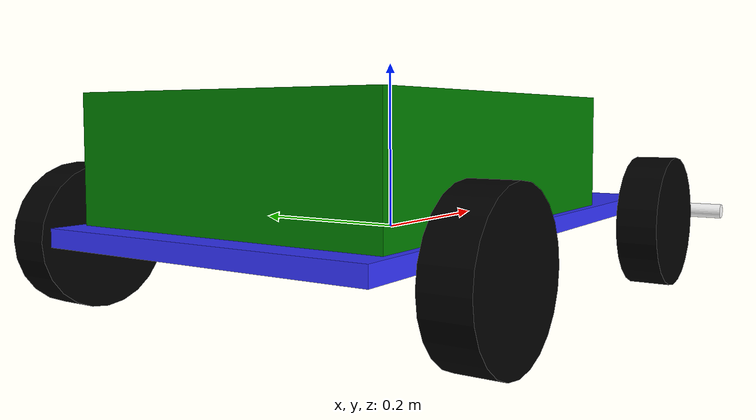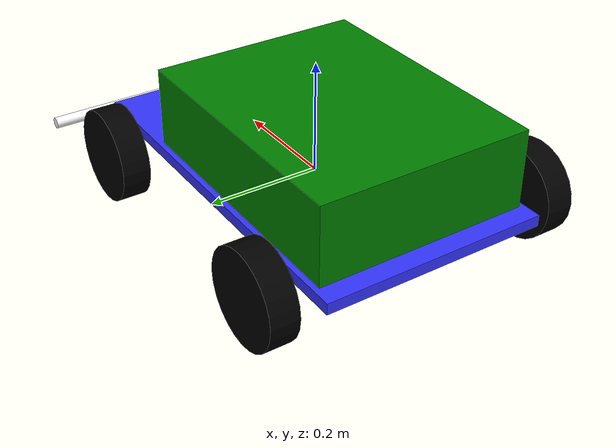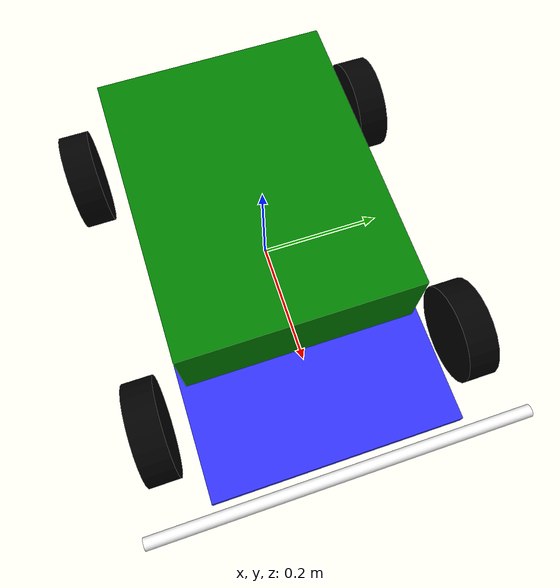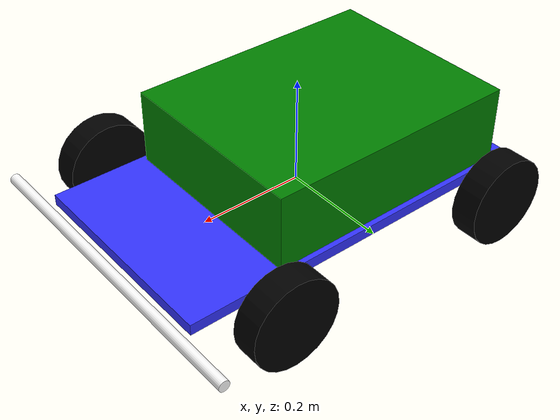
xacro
<?xml version="1.0"?>
<robot xmlns:xacro="http://www.ros.org/wiki/xacro"  name="robot">

    <xacro:include filename="inertial_macros.xacro"/>

    <material name="white">
        <color rgba="1 1 1 1" />
    </material>

    <material name="blue">
        <color rgba="0.2 0.2 1 1" />
    </material>

    <material name="black">
        <color rgba="0 0 0 1" />
    </material>

    <material name="green">
        <color rgba="0 0.5 0 1" />
    </material>

    <material name="silver">
        <color rgba="0.7 0.7 0.7 1" />
    </material>

    <!-- BASE LINK -->
    <!-- Wheelbase = 0.47, Back axle to rear chassis = 0.095 -->
    <link name="base_link">

    </link>

    <!-- CHASSIS LINK -->
    <joint name="chassis_joint" type="fixed">
        <parent link="base_link"/>
        <child link="chassis"/>
        <origin xyz="-0.33 0 0"/>
    </joint>

    <link name="chassis">
        <visual>
        <origin xyz="0.35 0 0.01"/>
            <geometry>
                <box size="0.7 0.4 0.02"/>
            </geometry>
            <material name="blue"/>
        </visual>
        <collision>
            <origin xyz="0.35 0 0.01"/>
            <geometry>
                <box size="0.7 0.4 0.02"/>
            </geometry>
        </collision>
        <xacro:inertial_box mass="5" x="0.7" y="0.4" z="0.02">
            <origin xyz="0.35 0 0.01" rpy="0.0 0.0 0.0"/>
        </xacro:inertial_box>
    </link>
    <gazebo reference="chassis">
            <material>Gazebo/Blue</material>
    </gazebo>

    <!-- BRAIN BOX -->

    <joint name="brainbox_joint" type="fixed">
        <parent link="chassis"/>
        <child link="brainbox"/>
        <origin xyz="0.035 0 0"/>
    </joint>

    <link name="brainbox">
        <visual>
        <origin xyz="0.2425 0 0.085"/>
            <geometry>
                <box size="0.485 0.38 0.15"/>
            </geometry>
            <material name="green"/>
        </visual>
        <collision>
        <origin xyz="0.2425 0 0.085"/>
            <geometry>
                <box size="0.485 0.38 0.15"/>
            </geometry>
            <material name="green"/>
        </collision>
        <xacro:inertial_box mass="2" x="0.485" y="0.38" z="0.15">
            <origin xyz="0.2425 0 0.085" rpy="0.0 0.0 0.0"/>
        </xacro:inertial_box>
    </link>
    <gazebo reference="brainbox">
            <material>Gazebo/Green</material>
    </gazebo>

    <!-- BUMPER -->

    <joint name="bumper_joint" type="fixed">
        <parent link="chassis"/>
        <child link="bumper"/>
        <origin xyz="0.72 0 0" rpy="-${pi/2} 0 0"/>
    </joint>

    <link name="bumper">
        <visual>
            <geometry>
                <cylinder radius="0.01" length="0.62"/>
            </geometry>
            <material name="white"/>
        </visual>
        <collision>
            <geometry>
                <cylinder radius="0.01" length="0.62"/>
            </geometry>
        </collision>
        <xacro:inertial_cylinder mass="0.05" length="0.62" radius="0.01">
            <origin xyz="0 0 0" rpy="0 0 0"/>
        </xacro:inertial_cylinder>
    </link>
    <gazebo reference="bumper">
            <material>Gazebo/White</material>
    </gazebo>

    <!-- BACK -->

    <!-- BACK LEFT WHEEL LINK -->

    <joint name="back_left_wheel_joint" type="continuous">
        <parent link="base_link"/>
        <child link="back_left_wheel"/>
        <origin xyz="-0.235 0.26 0" rpy="-${pi/2} 0 0"/>
        <axis xyz="0 0 1"/>
    </joint>

    <link name="back_left_wheel">
        <visual>
            <geometry>
                <cylinder radius="0.08255" length="0.05"/>
            </geometry>
            <material name="black"/>
        </visual>
        <collision>
            <geometry>
                <cylinder radius="0.08255" length="0.05"/>
            </geometry>
        </collision>
        <xacro:inertial_cylinder mass="2" length="0.05" radius="0.08255">
            <origin xyz="0 0 0" rpy="0 0 0"/>
        </xacro:inertial_cylinder>
    </link>
    <gazebo reference="back_left_wheel">
            <material>Gazebo/Black</material>
    </gazebo>

        <!-- BACK RIGHT WHEEL LINK -->

    <joint name="back_right_wheel_joint" type="continuous">
        <parent link="base_link"/>
        <child link="back_right_wheel"/>
        <origin xyz="-0.235 -0.26 0" rpy="${pi/2} 0 0"/>
        <axis xyz="0 0 -1"/>
    </joint>

    <link name="back_right_wheel">
        <visual>
            <geometry>
                <cylinder radius="0.08255" length="0.05"/>
            </geometry>
            <material name="black"/>
        </visual>
        <collision>
            <geometry>
                <cylinder radius="0.08255" length="0.05"/>
            </geometry>
        </collision>
        <xacro:inertial_cylinder mass="2" length="0.05" radius="0.08255">
            <origin xyz="0 0 0" rpy="0 0 0"/>
        </xacro:inertial_cylinder>
    </link>
    <gazebo reference="back_right_wheel">
            <material>Gazebo/Black</material>
    </gazebo>

        <!-- FRONT -->

        <!-- FRONT LEFT WHEEL LINK -->

    <joint name="front_left_wheel_joint" type="continuous">
        <parent link="base_link"/>
        <child link="front_left_wheel"/>
        <origin xyz="0.235 0.26 0" rpy="-${pi/2} 0 0"/>
        <axis xyz="0 0 1"/>
    </joint>

    <link name="front_left_wheel">
        <visual>
            <geometry>
                <cylinder radius="0.08255" length="0.05"/>
            </geometry>
            <material name="black"/>
        </visual>
        <collision>
            <geometry>
                <cylinder radius="0.08255" length="0.05"/>
            </geometry>
        </collision>
        <xacro:inertial_cylinder mass="2" length="0.05" radius="0.08255">
            <origin xyz="0 0 0" rpy="0 0 0"/>
        </xacro:inertial_cylinder>
    </link>
    <gazebo reference="front_left_wheel">
            <material>Gazebo/Black</material>
    </gazebo>

        <!-- FRONT RIGHT WHEEL LINK -->

    <joint name="front_right_wheel_joint" type="continuous">
        <parent link="base_link"/>
        <child link="front_right_wheel"/>
        <origin xyz="0.235 -0.26 0" rpy="${pi/2} 0 0"/>
        <axis xyz="0 0 -1"/>
    </joint>

    <link name="front_right_wheel">
        <visual>
            <geometry>
                <cylinder radius="0.08255" length="0.05"/>
            </geometry>
            <material name="black"/>
        </visual>
        <collision>
            <geometry>
                <cylinder radius="0.08255" length="0.05"/>
            </geometry>
        </collision>
        <xacro:inertial_cylinder mass="2" length="0.05" radius="0.08255">
            <origin xyz="0 0 0" rpy="0 0 0"/>
        </xacro:inertial_cylinder>
    </link>
    <gazebo reference="front_right_wheel">
            <material>Gazebo/Black</material>
    </gazebo>

</robot>
